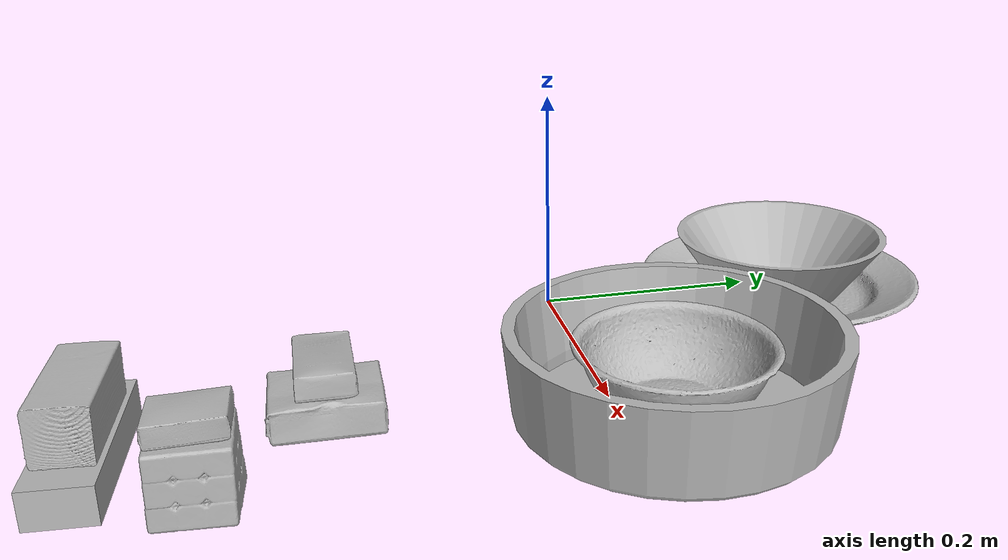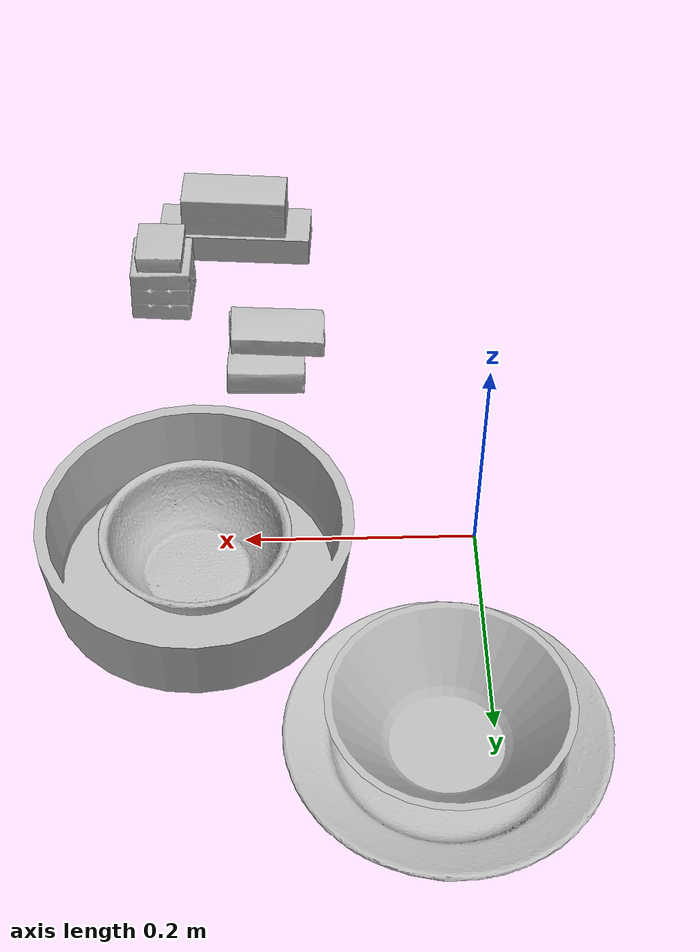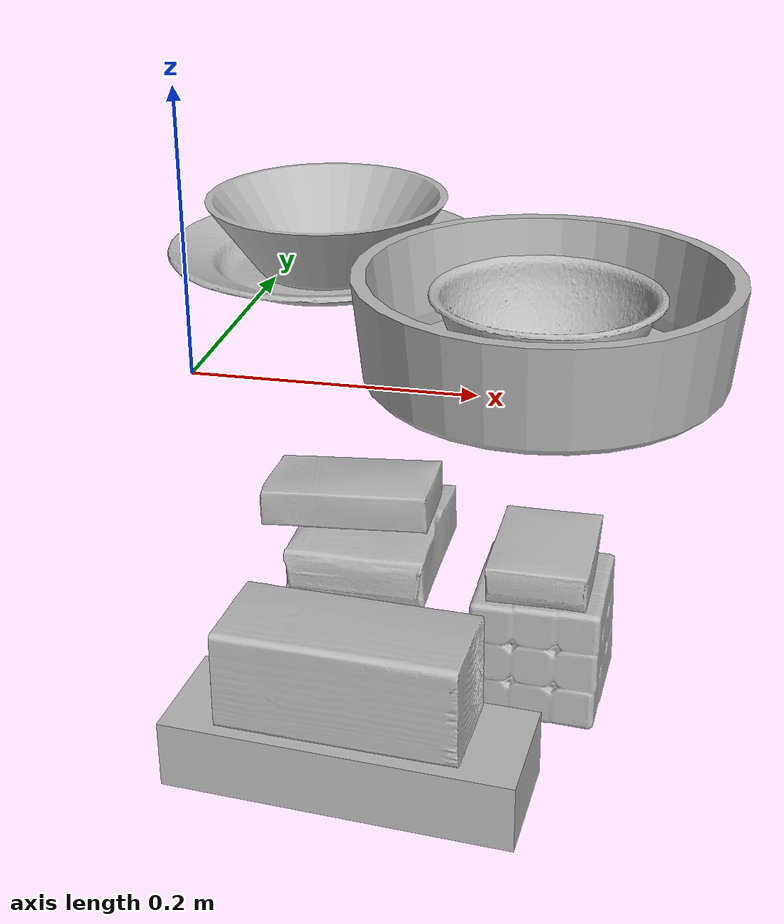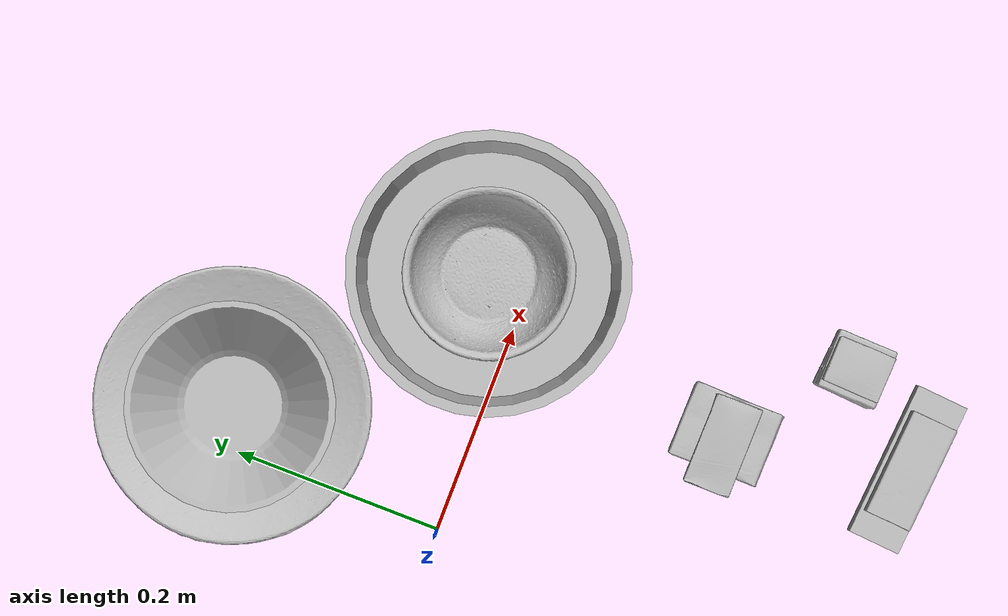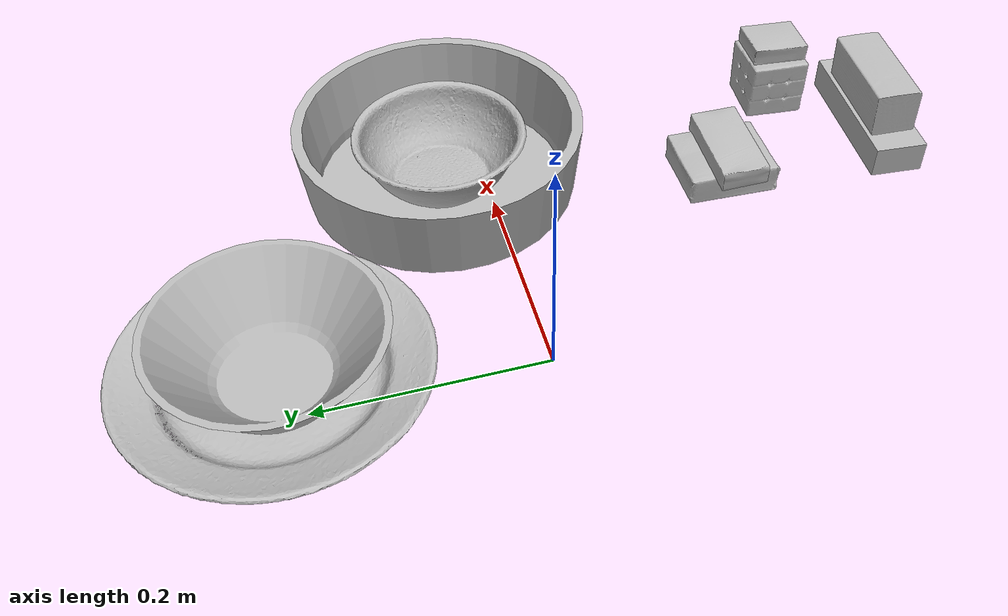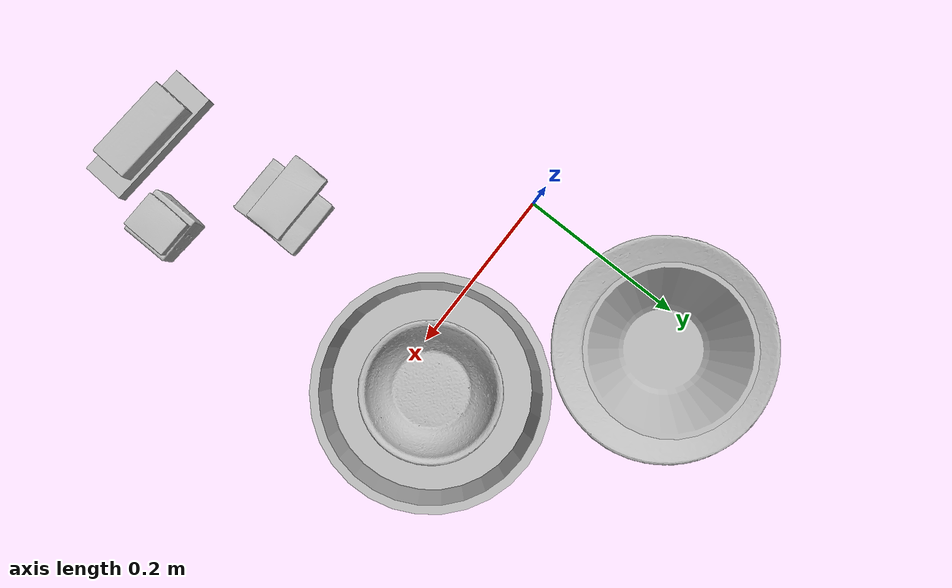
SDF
<?xml version="1.0" ?>
<sdf version="1.4">
  <world name="default">
    <light name="light1" type="point">
      <pose>0 0 1 0 0 0</pose>
      <diffuse>3 3 3 1</diffuse>
      <specular>3 3 3 1</specular>
    </light>
    <light name="light2" type="point">
      <pose>0 0.5 2 0 0 0</pose>
      <diffuse>1 1 1 1</diffuse>
      <specular>1 1 1 1</specular>
    </light>
    <light name="light3" type="point">
      <pose>0 0.5 2 0 0 0</pose>
      <diffuse>3 3 3 1</diffuse>
      <specular>3 3 3 1</specular>
    </light>
    <scene>
      <ambient>0.7 0.7 0.7</ambient>
    </scene>
    <model name="box1">
      <link name="link_box1">
        <collision name="default">
          <geometry>
            <mesh>
              <uri>model://gelatin_box/collision_meshes/collision.obj</uri>
              <scale>1.0 1.0 1.0</scale>
            </mesh>
          </geometry>
          <surface>
            <friction>
              <ode>
                <mu>0.5</mu>
                <mu2>0.5</mu2>
              </ode>
            </friction>
          </surface>
        </collision>
        <visual name="default">
          <geometry>
            <mesh>
              <uri>model://gelatin_box/visual_meshes/visual.dae</uri>
              <scale>1.0 1.0 1.0</scale>
            </mesh>
          </geometry>
        </visual>
        <inertial>
          <mass>0.1979130208492279</mass>
          <pose>0.0004319618456065655 0.00011156871914863586 -0.0003640321083366871 -0.0010503722055948273 -0.004755818222760974 0.016440559471883928</pose>
          <inertia>
            <ixx>0.00013971045</ixx>
            <iyy>9.9794444e-05</iyy>
            <izz>0.00021267045</izz>
            <ixy>0</ixy>
            <ixz>0</ixz>
            <iyz>0</iyz>
          </inertia>
        </inertial>
      </link>
      <pose>0.17997215688228607 -0.22008885443210602 0.015168318524956703 0.005597993714199946 -0.00730522900513444 -0.025928622723222168</pose>
    </model>
    <model name="box11">
      <link name="link_box11">
        <collision name="default">
          <geometry>
            <mesh>
              <uri>model://sugar_box/collision_meshes/collision.obj</uri>
              <scale>0.5 0.5 0.5</scale>
            </mesh>
          </geometry>
          <surface>
            <friction>
              <ode>
                <mu>0.5</mu>
                <mu2>0.5</mu2>
              </ode>
            </friction>
          </surface>
        </collision>
        <visual name="default">
          <geometry>
            <mesh>
              <uri>model://sugar_box/visual_meshes/visual.dae</uri>
              <scale>0.5 0.5 0.5</scale>
            </mesh>
          </geometry>
        </visual>
        <inertial>
          <mass>0.10992158949375153</mass>
          <pose>0.0005171863595023751 1.924554817378521e-05 -0.00018182402709499002 -0.00040462650409139634 0.0010506636387973133 0.002615378555960767</pose>
          <inertia>
            <ixx>2.2896586e-05</ixx>
            <iyy>7.400649e-05</iyy>
            <izz>8.8594585e-05</izz>
            <ixy>0</ixy>
            <ixz>0</ixz>
            <iyz>0</iyz>
          </inertia>
        </inertial>
      </link>
      <pose>0.1693263202905655 -0.21968603134155273 0.040783319622278214 -0.016301574657700272 -0.05660842440432575 -0.015057533483389611</pose>
    </model>
    <model name="box2">
      <link name="link_box2">
        <collision name="default">
          <geometry>
            <mesh>
              <uri>model://jenga/collision_meshes/collision.obj</uri>
              <scale>1.0 1.0 1.0</scale>
            </mesh>
          </geometry>
          <surface>
            <friction>
              <ode>
                <mu>0.5</mu>
                <mu2>0.5</mu2>
              </ode>
            </friction>
          </surface>
        </collision>
        <visual name="default">
          <geometry>
            <mesh>
              <uri>model://jenga/visual_meshes/visual.dae</uri>
              <scale>1.0 1.0 1.0</scale>
            </mesh>
          </geometry>
        </visual>
        <inertial>
          <mass>0.12651896476745605</mass>
          <pose>-2.502855807051674e-07 -0.00010250010382151231 -4.0923401684267446e-05 0.0 -7.34215461761844e-07 0.0</pose>
          <inertia>
            <ixx>3.5010868e-05</ixx>
            <iyy>0.00023723267</iyy>
            <izz>0.00025326604</izz>
            <ixy>0</ixy>
            <ixz>0</ixz>
            <iyz>0</iyz>
          </inertia>
        </inertial>
      </link>
      <pose>0.2100084125995636 -0.3898977041244507 0.014999447390437126 3.7073259797554267e-06 -6.221412315398369e-06 -0.0786363542832578</pose>
    </model>
    <model name="box21">
      <link name="link_box21">
        <collision name="default">
          <geometry>
            <mesh>
              <uri>model://wood_block/collision_meshes/collision.obj</uri>
              <scale>0.5 0.5 0.5</scale>
            </mesh>
          </geometry>
          <surface>
            <friction>
              <ode>
                <mu>0.5</mu>
                <mu2>0.5</mu2>
              </ode>
            </friction>
          </surface>
        </collision>
        <visual name="default">
          <geometry>
            <mesh>
              <uri>model://wood_block/visual_meshes/visual.dae</uri>
              <scale>0.5 0.5 0.5</scale>
            </mesh>
          </geometry>
        </visual>
        <inertial>
          <mass>0.17952100932598114</mass>
          <pose>-2.906657982748584e-06 -0.00028540476341731846 0.00013204291462898254 -0.052208472466385096 -0.005192695659959234 -0.0068613786899108485</pose>
          <inertia>
            <ixx>6.0056565e-05</ixx>
            <iyy>0.0001897187</iyy>
            <izz>0.00018900905</izz>
            <ixy>0</ixy>
            <ixz>0</ixz>
            <iyz>0</iyz>
          </inertia>
        </inertial>
      </link>
      <pose>0.21000231802463531 -0.3891284763813019 0.052525486797094345 -0.016575590661457217 -0.0006453216516790236 -0.07481565981720012</pose>
    </model>
    <model name="box3">
      <link name="link_box3">
        <collision name="default">
          <geometry>
            <mesh>
              <uri>model://rubiks_cube/collision_meshes/collision.obj</uri>
              <scale>1.0 1.0 1.0</scale>
            </mesh>
          </geometry>
          <surface>
            <friction>
              <ode>
                <mu>0.5</mu>
                <mu2>0.5</mu2>
              </ode>
            </friction>
          </surface>
        </collision>
        <visual name="default">
          <geometry>
            <mesh>
              <uri>model://rubiks_cube/visual_meshes/visual.dae</uri>
              <scale>1.0 1.0 1.0</scale>
            </mesh>
          </geometry>
        </visual>
        <inertial>
          <mass>0.2539031207561493</mass>
          <pose>2.6721041649580002e-05 5.2569666877388954e-05 -7.264316082000732e-06 -0.05467208428881645 -0.09814040742269707 -0.034455380154792534</pose>
          <inertia>
            <ixx>0.00014029852</ixx>
            <iyy>0.00013964424</iyy>
            <izz>0.00014146113</izz>
            <ixy>0</ixy>
            <ixz>0</ixz>
            <iyz>0</iyz>
          </inertia>
        </inertial>
      </link>
      <pose>0.2799226641654968 -0.31022459268569946 0.0286790132522583 -2.54021433934972e-07 3.0542570161765296e-07 -0.039342370418817406</pose>
    </model>
    <model name="box31">
      <link name="link_box31">
        <collision name="default">
          <geometry>
            <mesh>
              <uri>model://pudding_box/collision_meshes/collision.obj</uri>
              <scale>0.5 0.5 0.5</scale>
            </mesh>
          </geometry>
          <surface>
            <friction>
              <ode>
                <mu>0.5</mu>
                <mu2>0.5</mu2>
              </ode>
            </friction>
          </surface>
        </collision>
        <visual name="default">
          <geometry>
            <mesh>
              <uri>model://pudding_box/visual_meshes/visual.dae</uri>
              <scale>0.5 0.5 0.5</scale>
            </mesh>
          </geometry>
        </visual>
        <inertial>
          <mass>0.030597222968935966</mass>
          <pose>0.00024474109522998333 0.00040339428232982755 -0.00025944135268218815 0.005213101792545572 -0.006603798718575614 0.020079825159656634</pose>
          <inertia>
            <ixx>8.6471455e-06</ixx>
            <iyy>5.8178607e-06</iyy>
            <izz>1.2769769e-05</izz>
            <ixy>0</ixy>
            <ixz>0</ixz>
            <iyz>0</iyz>
          </inertia>
        </inertial>
      </link>
      <pose>0.27987608313560486 -0.3102368712425232 0.06752669811248779 0.025528556095177825 0.003597490348273456 -0.0399238703570625</pose>
    </model>
    <model name="plate1">
      <link name="link_plate1">
        <collision name="default">
          <geometry>
            <mesh>
              <uri>model://pan_tefal/collision_meshes/collision.obj</uri>
              <scale>1.0 1.0 1.0</scale>
            </mesh>
          </geometry>
          <surface>
            <friction>
              <ode>
                <mu>0.5</mu>
                <mu2>0.5</mu2>
              </ode>
            </friction>
          </surface>
        </collision>
        <visual name="default">
          <geometry>
            <mesh>
              <uri>model://pan_tefal/visual_meshes/visual.dae</uri>
              <scale>1.0 1.0 1.0</scale>
            </mesh>
          </geometry>
        </visual>
        <inertial>
          <mass>1.6321053504943848</mass>
          <pose>-0.00018001697026193142 3.279276279499754e-05 -0.00851493887603283 0.0008190355512640809 -0.00033013448733331557 -0.33186498661790637</pose>
          <inertia>
            <ixx>0.011266344</ixx>
            <iyy>0.011338978</iyy>
            <izz>0.02073917</izz>
            <ixy>0</ixy>
            <ixz>0</ixz>
            <iyz>0</iyz>
          </inertia>
        </inertial>
      </link>
      <pose>0.23999997973442078 0.04000005125999451 0.038050003349781036 -2.6689747764847317e-09 5.992122441498833e-09 -0.07664251128117612</pose>
    </model>
    <model name="bowl1">
      <link name="link_bowl1">
        <collision name="default">
          <geometry>
            <mesh>
              <uri>model://bowl/collision_meshes/collision.obj</uri>
              <scale>1.0 1.0 1.0</scale>
            </mesh>
          </geometry>
          <surface>
            <friction>
              <ode>
                <mu>0.5</mu>
                <mu2>0.5</mu2>
              </ode>
            </friction>
          </surface>
        </collision>
        <visual name="default">
          <geometry>
            <mesh>
              <uri>model://bowl/visual_meshes/visual.dae</uri>
              <scale>1.0 1.0 1.0</scale>
            </mesh>
          </geometry>
        </visual>
        <inertial>
          <mass>0.08853479474782944</mass>
          <pose>0.0002044534485321492 -0.0010302085429430008 -0.0008042657864280045 -0.015764086220495594 0.014546762208611713 0.7140398935341641</pose>
          <inertia>
            <ixx>0.00020337135</ixx>
            <iyy>0.00019882726</iyy>
            <izz>0.00034214073</izz>
            <ixy>0</ixy>
            <ixz>0</ixz>
            <iyz>0</iyz>
          </inertia>
        </inertial>
      </link>
      <pose>0.24002733826637268 0.039974842220544815 0.03548930957913399 0.0006314537364179991 0.001183659041578541 -0.24312087835856647</pose>
    </model>
    <model name="plate2">
      <link name="link_plate2">
        <collision name="default">
          <geometry>
            <mesh>
              <uri>model://plate/collision_meshes/collision.obj</uri>
              <scale>1.0 1.0 1.0</scale>
            </mesh>
          </geometry>
          <surface>
            <friction>
              <ode>
                <mu>0.5</mu>
                <mu2>0.5</mu2>
              </ode>
            </friction>
          </surface>
        </collision>
        <visual name="default">
          <geometry>
            <mesh>
              <uri>model://plate/visual_meshes/visual.dae</uri>
              <scale>1.0 1.0 1.0</scale>
            </mesh>
          </geometry>
        </visual>
        <inertial>
          <mass>0.10531359910964966</mass>
          <pose>-0.0006044624024070799 0.00027825951110571623 -0.001056199660524726 0.0022187923451504944 -0.0032254757952566134 0.45260828030698763</pose>
          <inertia>
            <ixx>0.00049265905</ixx>
            <iyy>0.00048794702</iyy>
            <izz>0.0009635677</izz>
            <ixy>0</ixy>
            <ixz>0</ixz>
            <iyz>0</iyz>
          </inertia>
        </inertial>
      </link>
      <pose>0.039999570697546005 0.2200000286102295 0.013734809122979641 -6.031120352313612e-06 -2.426083106291426e-05 0.050713749470195094</pose>
    </model>
    <model name="bowl2">
      <link name="link_bowl2">
        <collision name="default">
          <geometry>
            <mesh>
              <uri>model://bowl_a/collision_meshes/collision.obj</uri>
              <scale>1.0 1.0 1.0</scale>
            </mesh>
          </geometry>
          <surface>
            <friction>
              <ode>
                <mu>0.5</mu>
                <mu2>0.5</mu2>
              </ode>
            </friction>
          </surface>
        </collision>
        <visual name="default">
          <geometry>
            <mesh>
              <uri>model://bowl_a/visual_meshes/visual.dae</uri>
              <scale>1.0 1.0 1.0</scale>
            </mesh>
          </geometry>
        </visual>
        <inertial>
          <mass>0.4180941581726074</mass>
          <pose>0.000278673687716946 4.731199442176148e-05 -0.0013765294570475817 -0.0009805326545729344 -0.001093820496942545 -0.19124076645491772</pose>
          <inertia>
            <ixx>0.0011903334</ixx>
            <iyy>0.0011976411</iyy>
            <izz>0.0021170534</izz>
            <ixy>0</ixy>
            <ixz>0</ixz>
            <iyz>0</iyz>
          </inertia>
        </inertial>
      </link>
      <pose>0.03997233882546425 0.21961458027362823 0.03479037061333656 0.012555236246466215 -0.0022495576403327106 0.12143068433436303</pose>
    </model>
  </world>
</sdf>
